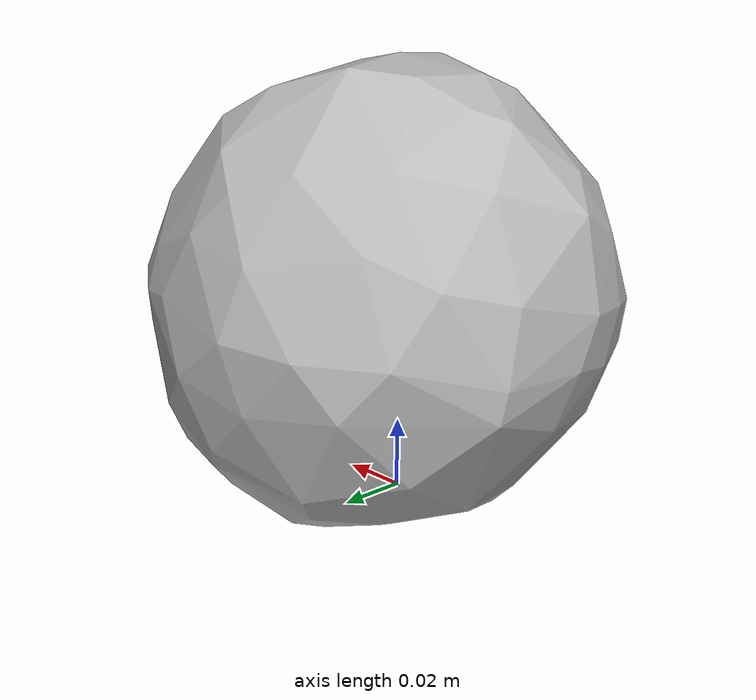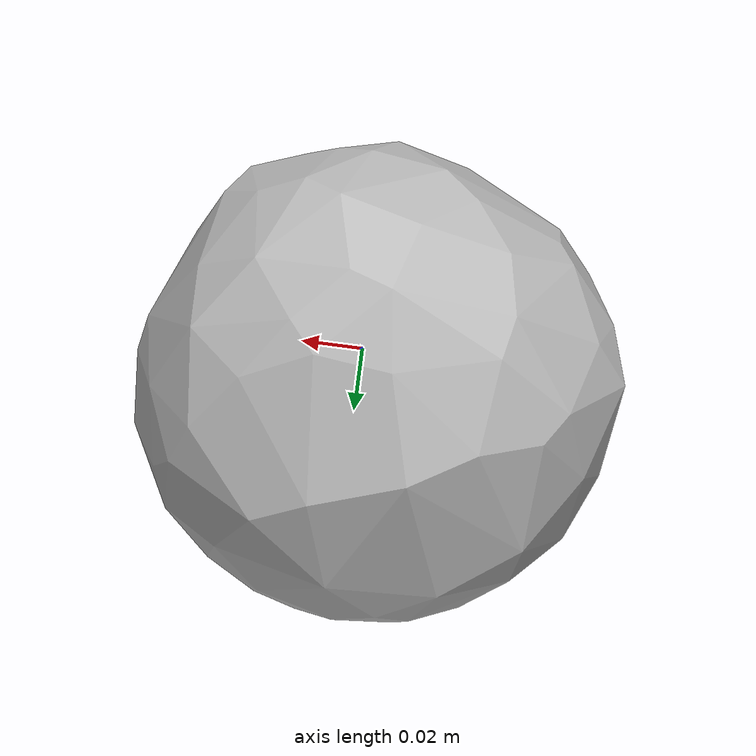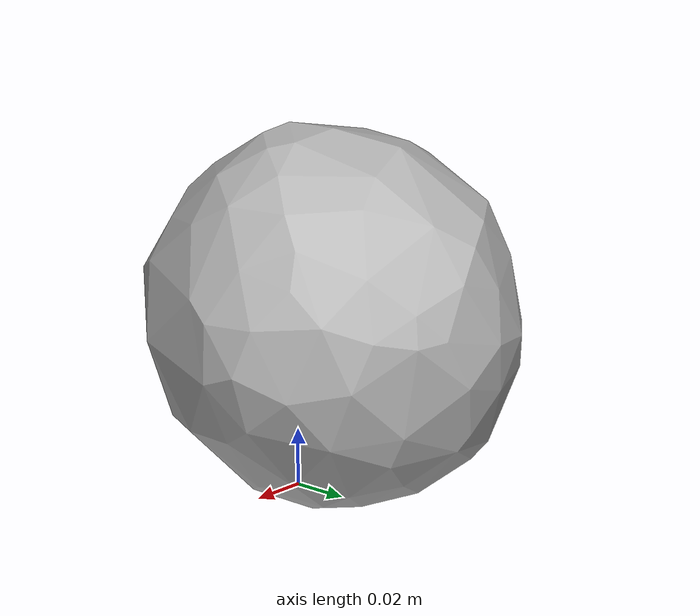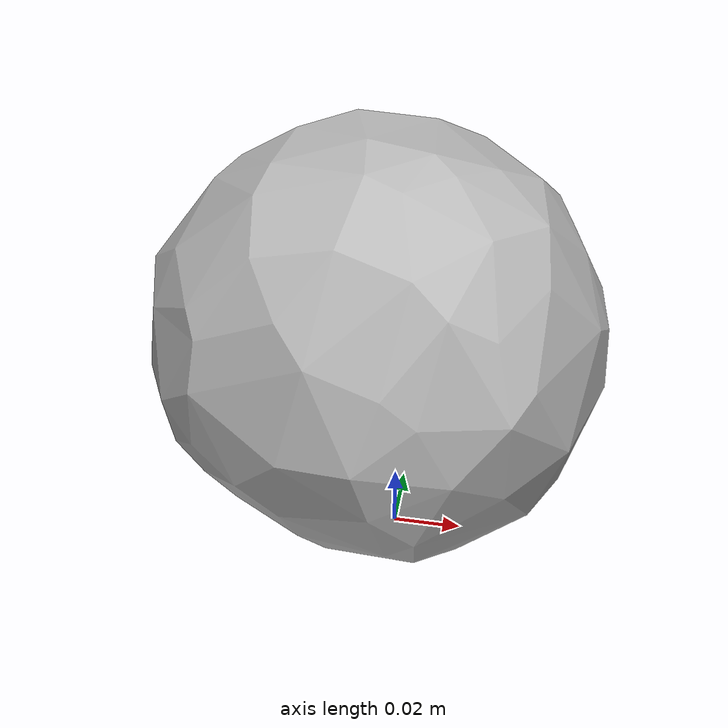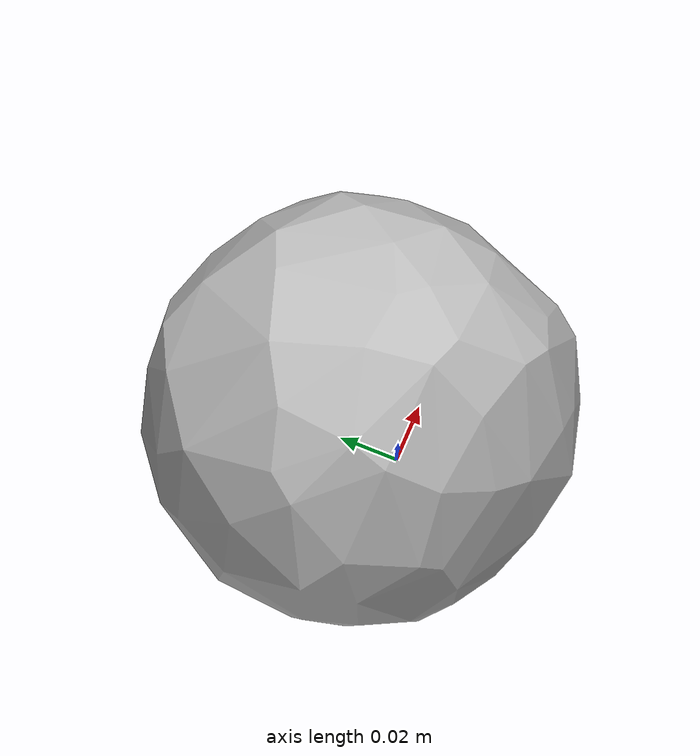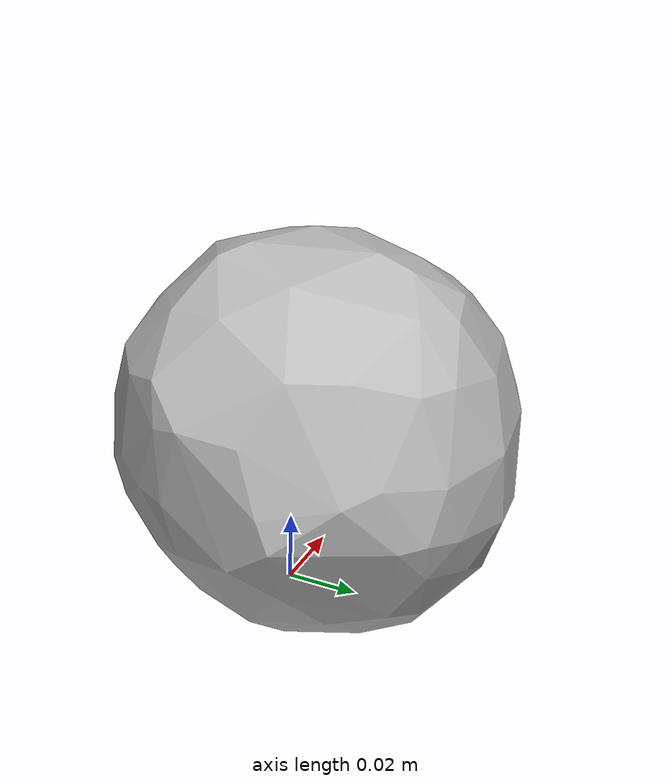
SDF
<?xml version='1.0'?>
<sdf version="1.4">
  <model name="053_mini_soccer_ball">
    <static>false</static>
    <link name="link">
      <inertial>
        <pose>-0.005908631093536952 0.011524253930047794 0.061312134225589336 2.9722098628511517 0.734237452189318 -2.134110373096871</pose>
        <mass>0.10534759481778322</mass>
        <inertia>
          <ixx>0.0001726347245317916</ixx>
          <ixy>9.460202720058954e-20</ixy>
          <ixz>-6.038029959892753e-21</ixz>
          <iyy>0.00016733274527037096</iyy>
          <iyz>2.4322061493773563e-21</iyz>
          <izz>0.00016457574365541516</izz>
        </inertia>
      </inertial>
      <collision name="collision">
        <geometry>
          <mesh>
            <!-- Use a downsampled mesh for collisions -->
            <uri>model:///053_mini_soccer_ball/053_mini_soccer_ball_250_collision.stl</uri>
	        </mesh>
        </geometry>
        <surface>
      </surface>
      </collision>
      <visual name="visual">
        <geometry>
          <mesh>
            <uri>model:///053_mini_soccer_ball/textured.obj</uri>
	        </mesh>
        </geometry>
        <material>
          <script>
            <uri>model:///053_mini_soccer_ball/053_mini_soccer_ball.material</uri>
            <name>053_mini_soccer_ball</name>
          </script>
        </material>
      </visual>
    </link>
  </model>
</sdf>
